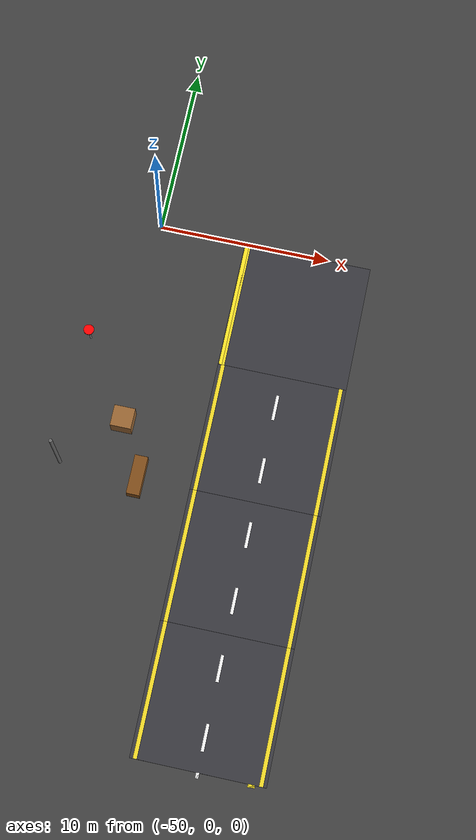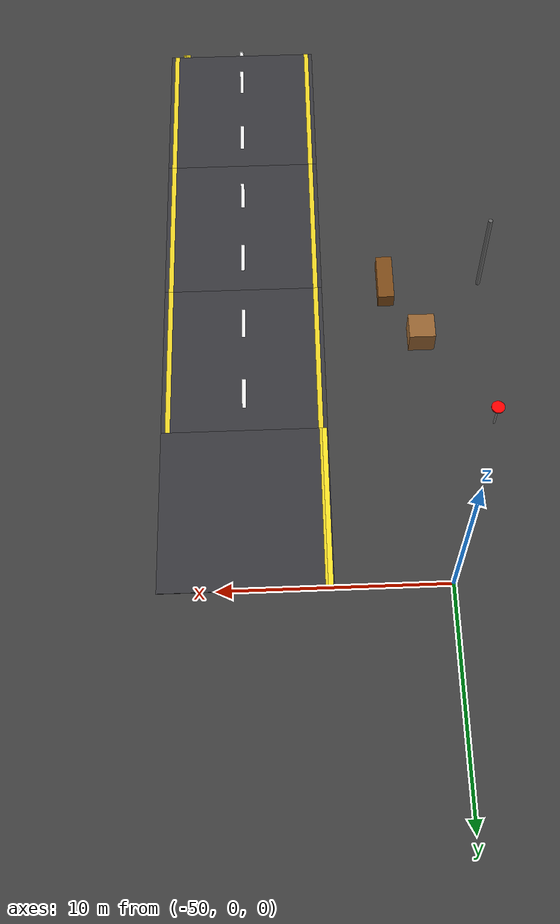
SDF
<sdf version="1.7">
 <world name="compact_city">
  <model name="ground_plane">
   <static>1</static>
   <pose>0 0 0.01 0 -0 0</pose>
   <link name="link">
    <collision name="collision">
     <geometry><plane><normal>0 0 1</normal><size>200 200</size></plane></geometry>
    </collision>
    <visual name="visual">
     <geometry><plane><normal>0 0 1</normal><size>200 200</size></plane></geometry>
     <material>
      <ambient>0.2 0.2 0.2 1</ambient>
      <diffuse>0.25 0.25 0.25 1</diffuse>
      <specular>0.1 0.1 0.1 1</specular>
     </material>
    </visual>
   </link>
  </model>
  <model name="road_tile_45">
   <static>1</static>
   <pose>-41.25 -3.75 0.015 0 -0 0</pose>
   <link name="link">
    <collision name="collision"><geometry><box><size>7.5 7.5 0.03</size></box></geometry></collision>
    <visual name="visual">
     <geometry><box><size>7.5 7.5 0.03</size></box></geometry>
     <material>
      <ambient>0.18 0.18 0.2 1</ambient>
      <diffuse>0.22 0.22 0.24 1</diffuse>
      <specular>0.1 0.1 0.1 1</specular>
     </material>
    </visual>
   </link>
  </model>
  <model name="road_tile_56">
   <static>1</static>
   <pose>-41.25 -11.25 0.015 0 -0 1.5708</pose>
   <link name="link">
    <collision name="collision"><geometry><box><size>7.5 7.5 0.03</size></box></geometry></collision>
    <visual name="visual">
     <geometry><box><size>7.5 7.5 0.03</size></box></geometry>
     <material>
      <ambient>0.18 0.18 0.2 1</ambient>
      <diffuse>0.22 0.22 0.24 1</diffuse>
      <specular>0.1 0.1 0.1 1</specular>
     </material>
    </visual>
   </link>
  </model>
  <model name="road_tile_60">
   <static>1</static>
   <pose>-41.25 -18.75 0.015 0 -0 1.5708</pose>
   <link name="link">
    <collision name="collision"><geometry><box><size>7.5 7.5 0.03</size></box></geometry></collision>
    <visual name="visual">
     <geometry><box><size>7.5 7.5 0.03</size></box></geometry>
     <material>
      <ambient>0.18 0.18 0.2 1</ambient>
      <diffuse>0.22 0.22 0.24 1</diffuse>
      <specular>0.1 0.1 0.1 1</specular>
     </material>
    </visual>
   </link>
  </model>
  <model name="road_tile_64">
   <static>1</static>
   <pose>-41.25 -26.25 0.015 0 -0 1.5708</pose>
   <link name="link">
    <collision name="collision"><geometry><box><size>7.5 7.5 0.03</size></box></geometry></collision>
    <visual name="visual">
     <geometry><box><size>7.5 7.5 0.03</size></box></geometry>
     <material>
      <ambient>0.18 0.18 0.2 1</ambient>
      <diffuse>0.22 0.22 0.24 1</diffuse>
      <specular>0.1 0.1 0.1 1</specular>
     </material>
    </visual>
   </link>
  </model>
  <model name="el_131">
   <static>1</static>
   <pose>-44.7 -26.25 0.038 0 -0 1.5708</pose>
   <link name="link">
    <visual name="v">
     <geometry><box><size>7.5 0.225 0.002</size></box></geometry>
     <material><ambient>0.9 0.8 0.1 1</ambient><diffuse>0.95 0.85 0.15 1</diffuse></material>
    </visual>
   </link>
  </model>
  <model name="el_132">
   <static>1</static>
   <pose>-37.8 -26.25 0.038 0 -0 1.5708</pose>
   <link name="link">
    <visual name="v">
     <geometry><box><size>7.5 0.225 0.002</size></box></geometry>
     <material><ambient>0.9 0.8 0.1 1</ambient><diffuse>0.95 0.85 0.15 1</diffuse></material>
    </visual>
   </link>
  </model>
  <model name="el_133">
   <static>1</static>
   <pose>-44.7 -18.75 0.038 0 -0 1.5708</pose>
   <link name="link">
    <visual name="v">
     <geometry><box><size>7.5 0.225 0.002</size></box></geometry>
     <material><ambient>0.9 0.8 0.1 1</ambient><diffuse>0.95 0.85 0.15 1</diffuse></material>
    </visual>
   </link>
  </model>
  <model name="el_134">
   <static>1</static>
   <pose>-37.8 -18.75 0.038 0 -0 1.5708</pose>
   <link name="link">
    <visual name="v">
     <geometry><box><size>7.5 0.225 0.002</size></box></geometry>
     <material><ambient>0.9 0.8 0.1 1</ambient><diffuse>0.95 0.85 0.15 1</diffuse></material>
    </visual>
   </link>
  </model>
  <model name="el_135">
   <static>1</static>
   <pose>-44.7 -11.25 0.038 0 -0 1.5708</pose>
   <link name="link">
    <visual name="v">
     <geometry><box><size>7.5 0.225 0.002</size></box></geometry>
     <material><ambient>0.9 0.8 0.1 1</ambient><diffuse>0.95 0.85 0.15 1</diffuse></material>
    </visual>
   </link>
  </model>
  <model name="el_136">
   <static>1</static>
   <pose>-37.8 -11.25 0.038 0 -0 1.5708</pose>
   <link name="link">
    <visual name="v">
     <geometry><box><size>7.5 0.225 0.002</size></box></geometry>
     <material><ambient>0.9 0.8 0.1 1</ambient><diffuse>0.95 0.85 0.15 1</diffuse></material>
    </visual>
   </link>
  </model>
  <model name="ld_1">
   <static>1</static>
   <pose>-41.25 -28.125 0.038 0 -0 1.5708</pose>
   <link name="link">
    <visual name="v">
     <geometry><box><size>1.5 0.18 0.002</size></box></geometry>
     <material><ambient>1 1 1 1</ambient><diffuse>0.95 0.95 0.95 1</diffuse></material>
    </visual>
   </link>
  </model>
  <model name="ld_2">
   <static>1</static>
   <pose>-41.25 -24.375 0.038 0 -0 1.5708</pose>
   <link name="link">
    <visual name="v">
     <geometry><box><size>1.5 0.18 0.002</size></box></geometry>
     <material><ambient>1 1 1 1</ambient><diffuse>0.95 0.95 0.95 1</diffuse></material>
    </visual>
   </link>
  </model>
  <model name="ld_3">
   <static>1</static>
   <pose>-41.25 -20.625 0.038 0 -0 1.5708</pose>
   <link name="link">
    <visual name="v">
     <geometry><box><size>1.5 0.18 0.002</size></box></geometry>
     <material><ambient>1 1 1 1</ambient><diffuse>0.95 0.95 0.95 1</diffuse></material>
    </visual>
   </link>
  </model>
  <model name="ld_4">
   <static>1</static>
   <pose>-41.25 -16.875 0.038 0 -0 1.5708</pose>
   <link name="link">
    <visual name="v">
     <geometry><box><size>1.5 0.18 0.002</size></box></geometry>
     <material><ambient>1 1 1 1</ambient><diffuse>0.95 0.95 0.95 1</diffuse></material>
    </visual>
   </link>
  </model>
  <model name="ld_5">
   <static>1</static>
   <pose>-41.25 -13.125 0.038 0 -0 1.5708</pose>
   <link name="link">
    <visual name="v">
     <geometry><box><size>1.5 0.18 0.002</size></box></geometry>
     <material><ambient>1 1 1 1</ambient><diffuse>0.95 0.95 0.95 1</diffuse></material>
    </visual>
   </link>
  </model>
  <model name="ld_6">
   <static>1</static>
   <pose>-41.25 -9.375 0.038 0 -0 1.5708</pose>
   <link name="link">
    <visual name="v">
     <geometry><box><size>1.5 0.18 0.002</size></box></geometry>
     <material><ambient>1 1 1 1</ambient><diffuse>0.95 0.95 0.95 1</diffuse></material>
    </visual>
   </link>
  </model>
  <model name="ie_268">
   <static>1</static>
   <pose>-44.7 -3.75 0.038 0 -0 1.5708</pose>
   <link name="link">
    <visual name="v">
     <geometry><box><size>7.5 0.15 0.002</size></box></geometry>
     <material><ambient>0.9 0.8 0.1 1</ambient><diffuse>0.95 0.85 0.15 1</diffuse></material>
    </visual>
   </link>
  </model>
  <model name="ac_498">
   <static>1</static>
   <pose>-41.248 -30.1227 0.038 0 0 -1.53808</pose>
   <link name="link">
    <visual name="v">
     <geometry><box><size>0.260117 0.18 0.002</size></box></geometry>
     <material><ambient>1 1 1 1</ambient><diffuse>0.95 0.95 0.95 1</diffuse></material>
    </visual>
   </link>
  </model>
  <model name="ai_522">
   <static>1</static>
   <pose>-38.2495 -30.0246 0.038 0 0 -1.53808</pose>
   <link name="link">
    <visual name="v">
     <geometry><box><size>0.06 0.225 0.002</size></box></geometry>
     <material><ambient>0.9 0.8 0.1 1</ambient><diffuse>0.95 0.85 0.15 1</diffuse></material>
    </visual>
   </link>
  </model>
  <model name="ai_523">
   <static>1</static>
   <pose>-38.2464 -30.0735 0.038 0 0 -1.47259</pose>
   <link name="link">
    <visual name="v">
     <geometry><box><size>0.06 0.225 0.002</size></box></geometry>
     <material><ambient>0.9 0.8 0.1 1</ambient><diffuse>0.95 0.85 0.15 1</diffuse></material>
    </visual>
   </link>
  </model>
  <model name="ai_524">
   <static>1</static>
   <pose>-38.24 -30.1221 0.038 0 0 -1.40718</pose>
   <link name="link">
    <visual name="v">
     <geometry><box><size>0.06 0.225 0.002</size></box></geometry>
     <material><ambient>0.9 0.8 0.1 1</ambient><diffuse>0.95 0.85 0.15 1</diffuse></material>
    </visual>
   </link>
  </model>
  <model name="bench_7">
   <static>1</static>
   <pose>-48 -15 0.4 0 -0 1.57</pose>
   <link name="link">
    <collision name="collision"><geometry><box><size>2.25 0.75 0.8</size></box></geometry></collision>
    <visual name="visual">
     <geometry><box><size>2.25 0.75 0.8</size></box></geometry>
     <material><ambient>0.5 0.3 0.1 1</ambient><diffuse>0.5 0.3 0.1 1</diffuse></material>
    </visual>
   </link>
  </model>
  <model name="sign_6">
   <static>1</static>
   <pose>-52.5 -7.5 1.5 0 -0 1.57</pose>
   <link name="link">
    <collision name="collision">
     <geometry><cylinder><radius>0.3</radius><length>0.05</length></cylinder></geometry>
    </collision>
    <visual name="visual">
     <geometry><cylinder><radius>0.3</radius><length>0.05</length></cylinder></geometry>
     <material><ambient>1 0 0 1</ambient><diffuse>1 0 0 1</diffuse></material>
    </visual>
    <collision name="pole_col">
     <pose>0 0 -0.75 0 -0 0</pose>
     <geometry><cylinder><radius>0.05</radius><length>1.5</length></cylinder></geometry>
    </collision>
    <visual name="pole">
     <pose>0 0 -0.75 0 -0 0</pose>
     <geometry><cylinder><radius>0.05</radius><length>1.5</length></cylinder></geometry>
     <material><ambient>0.5 0.5 0.5 1</ambient><diffuse>0.5 0.5 0.5 1</diffuse></material>
    </visual>
   </link>
  </model>
  <model name="pole_7">
   <static>1</static>
   <pose>-52.5 -15 2.5 0 -0 0</pose>
   <link name="link">
    <collision name="collision">
     <geometry><cylinder><radius>0.1</radius><length>5</length></cylinder></geometry>
    </collision>
    <visual name="visual">
     <geometry><cylinder><radius>0.1</radius><length>5</length></cylinder></geometry>
     <material><ambient>0.3 0.3 0.3 1</ambient><diffuse>0.4 0.4 0.4 1</diffuse></material>
    </visual>
   </link>
  </model>
  <model name="box_4">
   <static>1</static>
   <pose>-49.5 -12 0.6 0 -0 0</pose>
   <link name="link">
    <collision name="collision"><geometry><box><size>1.2 1.2 1.2</size></box></geometry></collision>
    <visual name="visual">
     <geometry><box><size>1.2 1.2 1.2</size></box></geometry>
     <material><ambient>0.6 0.4 0.2 1</ambient><diffuse>0.6 0.4 0.2 1</diffuse></material>
    </visual>
   </link>
  </model>
  <model name="arc_c_325">
   <static>1</static>
   <pose>-41.2441 -30.1471 0.038 0 0 -1.5315</pose>
   <link name="link">
    <visual name="visual">
     <geometry><box><size>0.324449 0.18 0.002</size></box></geometry>
     <material><ambient>1 1 1 1</ambient><diffuse>0.95 0.95 0.95 1</diffuse></material>
    </visual>
   </link>
  </model>
  <model name="arc_in_345">
   <static>1</static>
   <pose>-38.3987 -30.0353 0.038 0 0 -1.5315</pose>
   <link name="link">
    <visual name="visual">
     <geometry><box><size>0.100668 0.225 0.002</size></box></geometry>
     <material><ambient>0.95 0.85 0.1 1</ambient><diffuse>1 0.9 0.15 1</diffuse></material>
    </visual>
   </link>
  </model>
  <model name="arc_in_346">
   <static>1</static>
   <pose>-38.3931 -30.1058 0.038 0 0 -1.453</pose>
   <link name="link">
    <visual name="visual">
     <geometry><box><size>0.100668 0.225 0.002</size></box></geometry>
     <material><ambient>0.95 0.85 0.1 1</ambient><diffuse>1 0.9 0.15 1</diffuse></material>
    </visual>
   </link>
  </model>
  <model name="tedge_494">
   <static>1</static>
   <pose>-44.85 -3.75 0.038 0 -0 1.5708</pose>
   <link name="link">
    <visual name="visual">
     <geometry><box><size>7.5 0.225 0.002</size></box></geometry>
     <material><ambient>0.95 0.85 0.1 1</ambient><diffuse>1 0.9 0.15 1</diffuse></material>
    </visual>
   </link>
  </model>
 </world>
</sdf>
